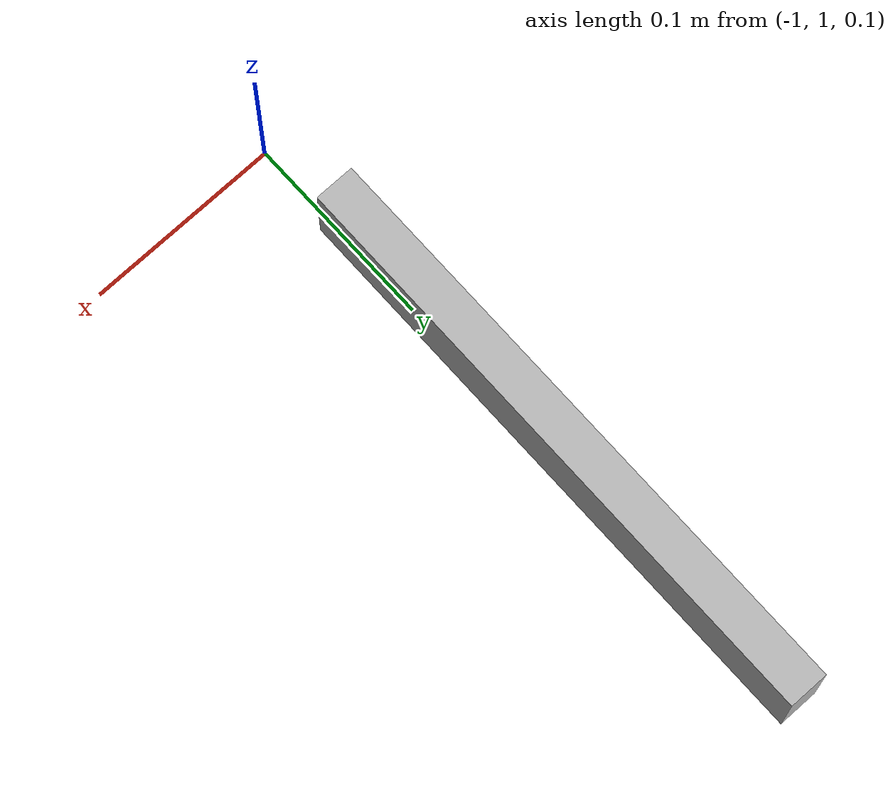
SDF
<?xml version='1.0'?>
<sdf version="1.6">
  <model name="traffic_bar_up">
    <link name="traffic_bar_up">
      <!-- Keep the course pose on the link: gazebo/spawn_sdf_model replaces a
           model-level pose with its initial_pose argument. -->
      <pose frame=''>-1.0 1.2 0.15 0 0 1.57</pose>
      <collision name="collision">
        <geometry>
          <box>
            <size>0.3 0.02 0.05</size>
          </box>
        </geometry>
      </collision>
      <collision name="lidar_proxy">
        <pose frame=''>0 0 0.04165 0 0 0</pose>
        <geometry>
          <box>
            <size>0.3 0.02 0.02</size>
          </box>
        </geometry>
      </collision>
      <visual name="visual">
        <geometry>
          <box>
            <size>0.3 0.02 0.05</size>
          </box>
        </geometry>
        <material>
          <script>
            <uri>model://turtlebot3_autorace_2020/traffic_bar_up/materials/scripts</uri>
            <uri>model://turtlebot3_autorace_2020/traffic_bar_up/materials/textures</uri>
            <name>traffic_bar_up</name>
          </script>
        </material>
      </visual>
    </link>
    <static>1</static>
  </model>
</sdf>
